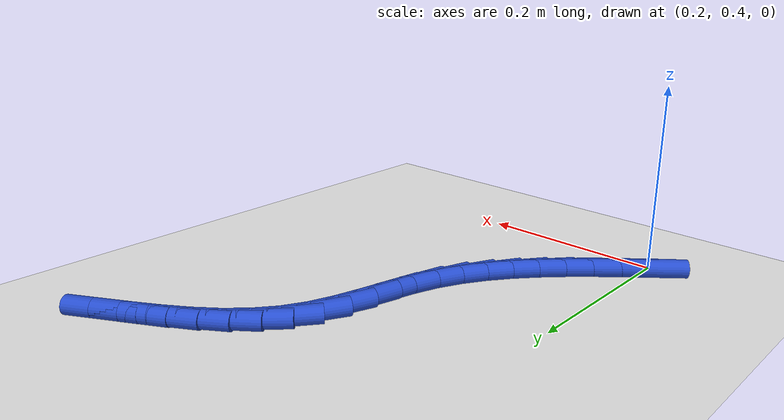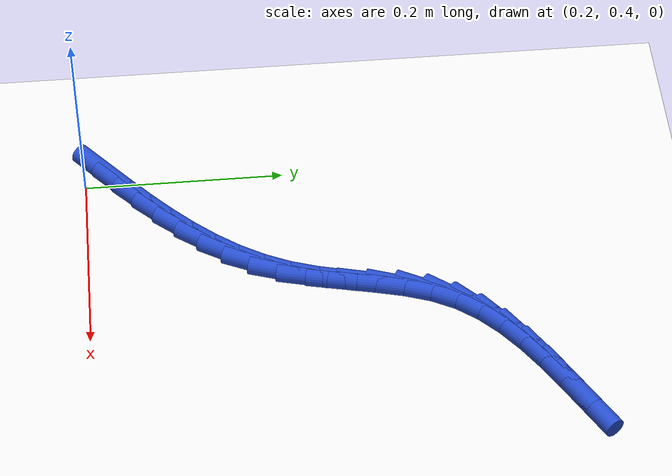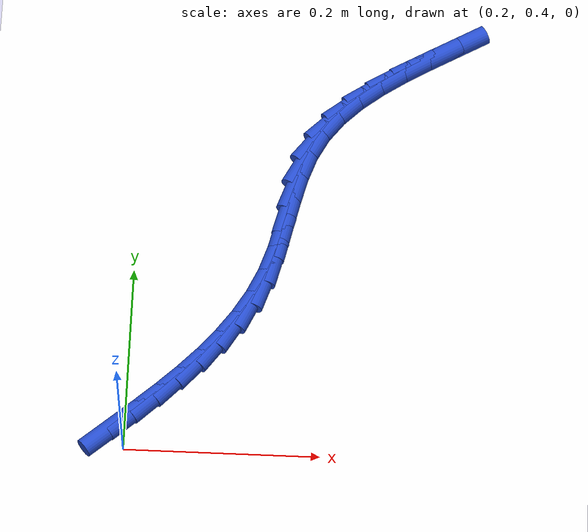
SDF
<sdf version="1.6">
 <world name="default">
  <model name="ground_plane">
   <static>1</static>
   <link name="link">
    <collision name="collision">
     <geometry><plane><normal>0 0 1</normal><size>100 100</size></plane></geometry>
     <surface><friction><ode><mu>100</mu><mu2>50</mu2></ode></friction></surface>
    </collision>
    <visual name="visual">
     <cast_shadows>0</cast_shadows>
     <geometry><plane><normal>0 0 1</normal><size>100 100</size></plane></geometry>
     <material>
      <script><uri>file://media/materials/scripts/gazebo.material</uri><name>Gazebo/WhiteGlow</name></script>
     </material>
    </visual>
   </link>
  </model>
  <model name="line">
   <link name="link_17">
    <pose>0.19024675193300591 0.42172033209359727 0.01 0 1.57 0.7153221707179961</pose>
    <collision name="collision">
     <geometry><cylinder><radius>0.01</radius><length>0.08</length></cylinder></geometry>
    </collision>
    <visual name="visual">
     <material>
      <script><name>Gazebo/Blue</name><uri>file://media/materials/scripts/gazebo.material</uri></script>
     </material>
     <geometry><cylinder><radius>0.01</radius><length>0.08</length></cylinder></geometry>
    </visual>
   </link>
   <link name="link_18">
    <pose>0.21273060155458504 0.4412548720994444 0.01 0 1.57 0.7341586989837482</pose>
    <collision name="collision">
     <geometry><cylinder><radius>0.01</radius><length>0.08</length></cylinder></geometry>
    </collision>
    <visual name="visual">
     <material>
      <script><name>Gazebo/Blue</name><uri>file://media/materials/scripts/gazebo.material</uri></script>
     </material>
     <geometry><cylinder><radius>0.01</radius><length>0.08</length></cylinder></geometry>
    </visual>
   </link>
   <link name="link_19">
    <pose>0.2347208564513779 0.4610996446262959 0.01 0 1.57 0.7659357295823375</pose>
    <collision name="collision">
     <geometry><cylinder><radius>0.01</radius><length>0.08</length></cylinder></geometry>
    </collision>
    <visual name="visual">
     <material>
      <script><name>Gazebo/Blue</name><uri>file://media/materials/scripts/gazebo.material</uri></script>
     </material>
     <geometry><cylinder><radius>0.01</radius><length>0.08</length></cylinder></geometry>
    </visual>
   </link>
   <link name="link_20">
    <pose>0.2558715374657615 0.48144265542922016 0.01 0 1.57 0.8113502055215448</pose>
    <collision name="collision">
     <geometry><cylinder><radius>0.01</radius><length>0.08</length></cylinder></geometry>
    </collision>
    <visual name="visual">
     <material>
      <script><name>Gazebo/Blue</name><uri>file://media/materials/scripts/gazebo.material</uri></script>
     </material>
     <geometry><cylinder><radius>0.01</radius><length>0.08</length></cylinder></geometry>
    </visual>
   </link>
   <link name="link_21">
    <pose>0.2758366654401127 0.5024719102632857 0.01 0 1.57 0.8712096768741262</pose>
    <collision name="collision">
     <geometry><cylinder><radius>0.01</radius><length>0.08</length></cylinder></geometry>
    </collision>
    <visual name="visual">
     <material>
      <script><name>Gazebo/Blue</name><uri>file://media/materials/scripts/gazebo.material</uri></script>
     </material>
     <geometry><cylinder><radius>0.01</radius><length>0.08</length></cylinder></geometry>
    </visual>
   </link>
   <link name="link_22">
    <pose>0.2942702612168084 0.5243754148835613 0.01 0 1.57 0.9461788514459866</pose>
    <collision name="collision">
     <geometry><cylinder><radius>0.01</radius><length>0.08</length></cylinder></geometry>
    </collision>
    <visual name="visual">
     <material>
      <script><name>Gazebo/Blue</name><uri>file://media/materials/scripts/gazebo.material</uri></script>
     </material>
     <geometry><cylinder><radius>0.01</radius><length>0.08</length></cylinder></geometry>
    </visual>
   </link>
   <link name="link_23">
    <pose>0.31082634563822564 0.5473411750451156 0.01 0 1.57 1.0363805787732143</pose>
    <collision name="collision">
     <geometry><cylinder><radius>0.01</radius><length>0.08</length></cylinder></geometry>
    </collision>
    <visual name="visual">
     <material>
      <script><name>Gazebo/Blue</name><uri>file://media/materials/scripts/gazebo.material</uri></script>
     </material>
     <geometry><cylinder><radius>0.01</radius><length>0.08</length></cylinder></geometry>
    </visual>
   </link>
   <link name="link_24">
    <pose>0.32515893954674135 0.571557196503017 0.01 0 1.57 1.1408759366571928</pose>
    <collision name="collision">
     <geometry><cylinder><radius>0.01</radius><length>0.08</length></cylinder></geometry>
    </collision>
    <visual name="visual">
     <material>
      <script><name>Gazebo/Blue</name><uri>file://media/materials/scripts/gazebo.material</uri></script>
     </material>
     <geometry><cylinder><radius>0.01</radius><length>0.08</length></cylinder></geometry>
    </visual>
   </link>
   <link name="link_25">
    <pose>0.3369220637847323 0.597211485012334 0.01 0 1.57 1.2533117832307805</pose>
    <collision name="collision">
     <geometry><cylinder><radius>0.01</radius><length>0.08</length></cylinder></geometry>
    </collision>
    <visual name="visual">
     <material>
      <script><name>Gazebo/Blue</name><uri>file://media/materials/scripts/gazebo.material</uri></script>
     </material>
     <geometry><cylinder><radius>0.01</radius><length>0.08</length></cylinder></geometry>
    </visual>
   </link>
   <link name="link_26">
    <pose>0.3458670698331932 0.6244330474358372 0.01 0 1.57 1.3317815715527865</pose>
    <collision name="collision">
     <geometry><cylinder><radius>0.01</radius><length>0.08</length></cylinder></geometry>
    </collision>
    <visual name="visual">
     <material>
      <script><name>Gazebo/Blue</name><uri>file://media/materials/scripts/gazebo.material</uri></script>
     </material>
     <geometry><cylinder><radius>0.01</radius><length>0.08</length></cylinder></geometry>
    </visual>
   </link>
   <link name="link_27">
    <pose>0.35276320812461914 0.6527338710475734 0.01 0 1.57 1.3559966836559978</pose>
    <collision name="collision">
     <geometry><cylinder><radius>0.01</radius><length>0.08</length></cylinder></geometry>
    </collision>
    <visual name="visual">
     <material>
      <script><name>Gazebo/Blue</name><uri>file://media/materials/scripts/gazebo.material</uri></script>
     </material>
     <geometry><cylinder><radius>0.01</radius><length>0.08</length></cylinder></geometry>
    </visual>
   </link>
   <link name="link_28">
    <pose>0.35898624692629233 0.6812582903359948 0.01 0 1.57 1.327103264247171</pose>
    <collision name="collision">
     <geometry><cylinder><radius>0.01</radius><length>0.08</length></cylinder></geometry>
    </collision>
    <visual name="visual">
     <material>
      <script><name>Gazebo/Blue</name><uri>file://media/materials/scripts/gazebo.material</uri></script>
     </material>
     <geometry><cylinder><radius>0.01</radius><length>0.08</length></cylinder></geometry>
    </visual>
   </link>
   <link name="link_29">
    <pose>0.36592002986289934 0.709145744751891 0.01 0 1.57 1.24116387648521</pose>
    <collision name="collision">
     <geometry><cylinder><radius>0.01</radius><length>0.08</length></cylinder></geometry>
    </collision>
    <visual name="visual">
     <material>
      <script><name>Gazebo/Blue</name><uri>file://media/materials/scripts/gazebo.material</uri></script>
     </material>
     <geometry><cylinder><radius>0.01</radius><length>0.08</length></cylinder></geometry>
    </visual>
   </link>
   <link name="link_30">
    <pose>0.3749484005591267 0.7355356737460504 0.01 0 1.57 1.0928867184606963</pose>
    <collision name="collision">
     <geometry><cylinder><radius>0.01</radius><length>0.08</length></cylinder></geometry>
    </collision>
    <visual name="visual">
     <material>
      <script><name>Gazebo/Blue</name><uri>file://media/materials/scripts/gazebo.material</uri></script>
     </material>
     <geometry><cylinder><radius>0.01</radius><length>0.08</length></cylinder></geometry>
    </visual>
   </link>
   <link name="link_31">
    <pose>0.3874107402021028 0.7595962526437878 0.01 0 1.57 0.9238161267379169</pose>
    <collision name="collision">
     <geometry><cylinder><radius>0.01</radius><length>0.08</length></cylinder></geometry>
    </collision>
    <visual name="visual">
     <material>
      <script><name>Gazebo/Blue</name><uri>file://media/materials/scripts/gazebo.material</uri></script>
     </material>
     <geometry><cylinder><radius>0.01</radius><length>0.08</length></cylinder></geometry>
    </visual>
   </link>
   <link name="link_32">
    <pose>0.4036739899737528 0.7811241403963048 0.01 0 1.57 0.7832656963590083</pose>
    <collision name="collision">
     <geometry><cylinder><radius>0.01</radius><length>0.08</length></cylinder></geometry>
    </collision>
    <visual name="visual">
     <material>
      <script><name>Gazebo/Blue</name><uri>file://media/materials/scripts/gazebo.material</uri></script>
     </material>
     <geometry><cylinder><radius>0.01</radius><length>0.08</length></cylinder></geometry>
    </visual>
   </link>
   <link name="link_33">
    <pose>0.4231597463419113 0.8005269680152354 0.01 0 1.57 0.6757883208692756</pose>
    <collision name="collision">
     <geometry><cylinder><radius>0.01</radius><length>0.08</length></cylinder></geometry>
    </collision>
    <visual name="visual">
     <material>
      <script><name>Gazebo/Blue</name><uri>file://media/materials/scripts/gazebo.material</uri></script>
     </material>
     <geometry><cylinder><radius>0.01</radius><length>0.08</length></cylinder></geometry>
    </visual>
   </link>
   <link name="link_34">
    <pose>0.44525056375168076 0.8182375991968811 0.01 0 1.57 0.5993874406189754</pose>
    <collision name="collision">
     <geometry><cylinder><radius>0.01</radius><length>0.08</length></cylinder></geometry>
    </collision>
    <visual name="visual">
     <material>
      <script><name>Gazebo/Blue</name><uri>file://media/materials/scripts/gazebo.material</uri></script>
     </material>
     <geometry><cylinder><radius>0.01</radius><length>0.08</length></cylinder></geometry>
    </visual>
   </link>
   <link name="link_35">
    <pose>0.46932899664816297 0.834688897637542 0.01 0 1.57 0.5506325841919487</pose>
    <collision name="collision">
     <geometry><cylinder><radius>0.01</radius><length>0.08</length></cylinder></geometry>
    </collision>
    <visual name="visual">
     <material>
      <script><name>Gazebo/Blue</name><uri>file://media/materials/scripts/gazebo.material</uri></script>
     </material>
     <geometry><cylinder><radius>0.01</radius><length>0.08</length></cylinder></geometry>
    </visual>
   </link>
   <link name="link_36">
    <pose>0.4947775994764606 0.8503137270335204 0.01 0 1.57 0.5265672052131826</pose>
    <collision name="collision">
     <geometry><cylinder><radius>0.01</radius><length>0.08</length></cylinder></geometry>
    </collision>
    <visual name="visual">
     <material>
      <script><name>Gazebo/Blue</name><uri>file://media/materials/scripts/gazebo.material</uri></script>
     </material>
     <geometry><cylinder><radius>0.01</radius><length>0.08</length></cylinder></geometry>
    </visual>
   </link>
   <link name="link_37">
    <pose>0.5209789266816753 0.8655449510811162 0.01 0 1.57 0.5254488509580636</pose>
    <collision name="collision">
     <geometry><cylinder><radius>0.01</radius><length>0.08</length></cylinder></geometry>
    </collision>
    <visual name="visual">
     <material>
      <script><name>Gazebo/Blue</name><uri>file://media/materials/scripts/gazebo.material</uri></script>
     </material>
     <geometry><cylinder><radius>0.01</radius><length>0.08</length></cylinder></geometry>
    </visual>
   </link>
  </model>
 </world>
</sdf>
